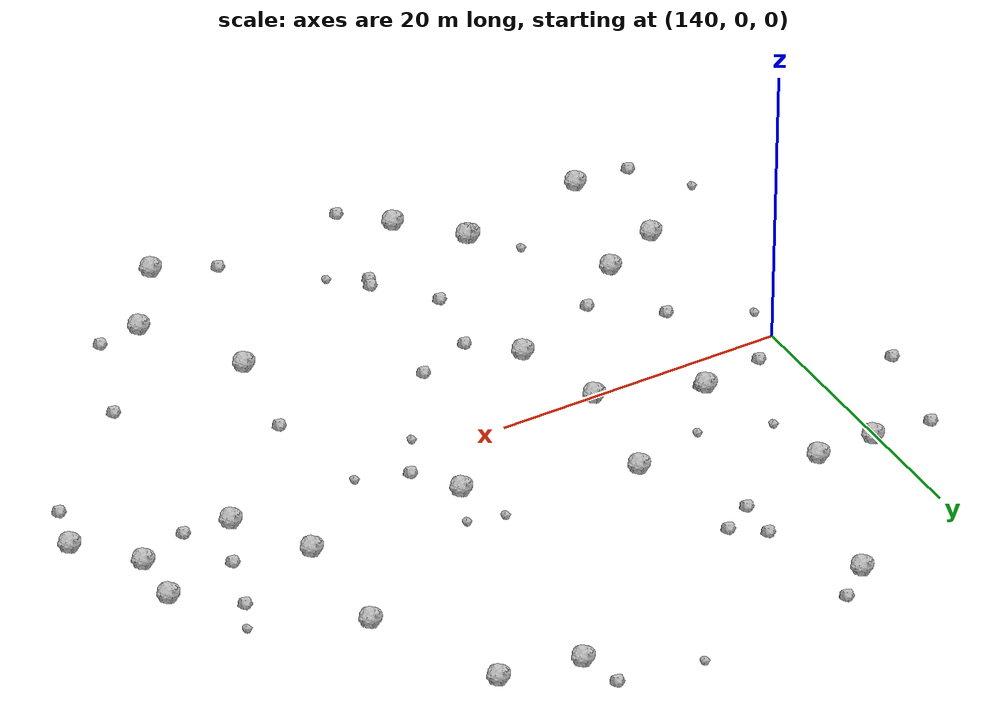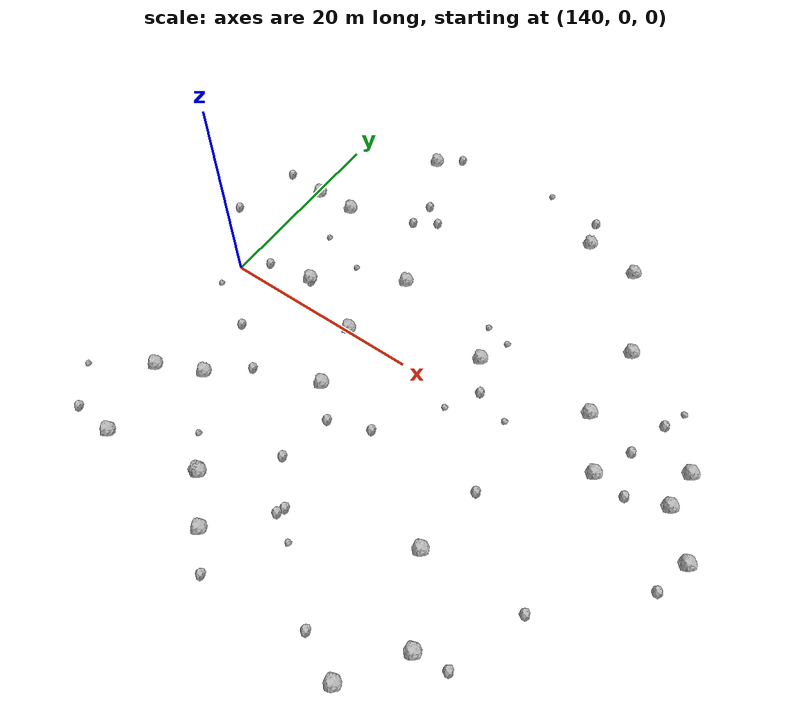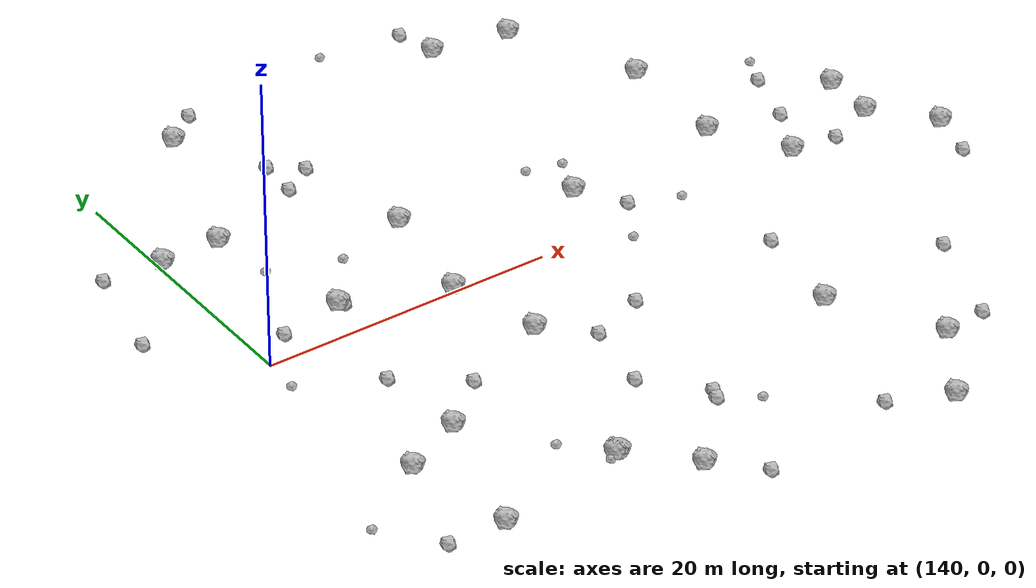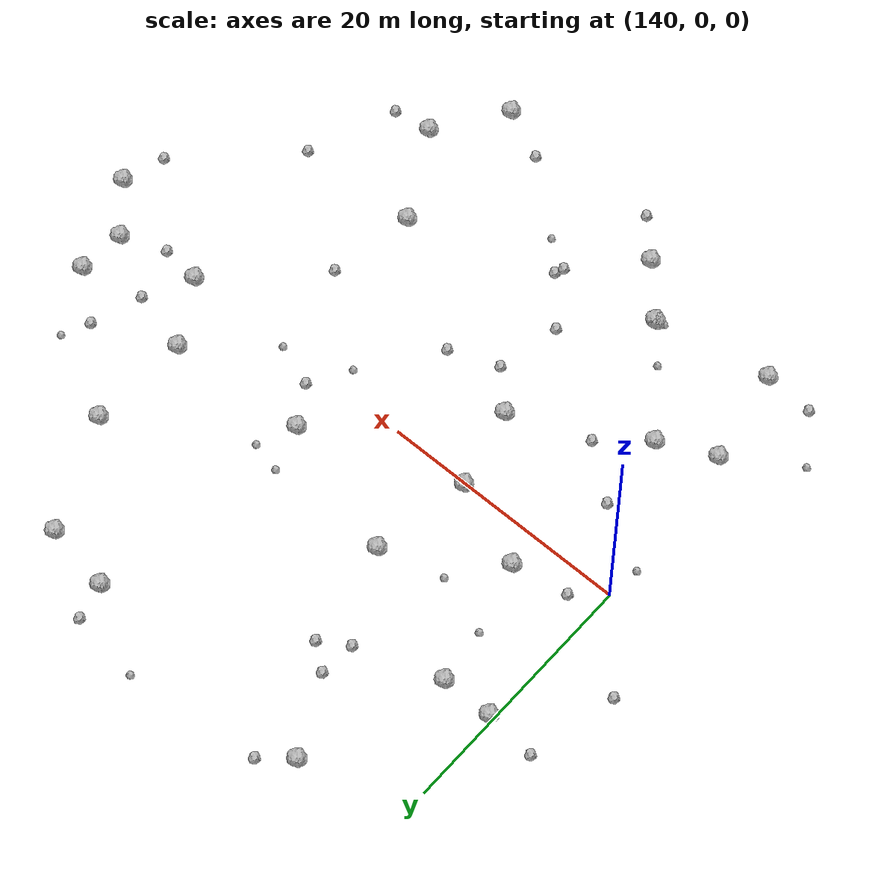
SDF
<sdf version="1.6">
 <world name="default">
  <include><uri>model://sun</uri></include>
  <model name="rock1_4_2">
   <include><uri>model://rock1</uri><pose>151.65150310497486 -19.251327201500587 0.5 0 0 0</pose></include>
  </model>
  <model name="rock1_4_3">
   <include><uri>model://rock1</uri><pose>189.61435596835423 -2.4234893984675523 0.5 0 0 0</pose></include>
  </model>
  <model name="rock1_4_4">
   <include><uri>model://rock1</uri><pose>140.41668759610215 12.68157136962057 0.5 0 0 0</pose></include>
  </model>
  <model name="rock1_4_5">
   <include><uri>model://rock1</uri><pose>165.72787047283174 4.593321504151483 0.5 0 0 0</pose></include>
  </model>
  <model name="rock1_4_6">
   <include><uri>model://rock1</uri><pose>144.50465321359263 12.731232285381054 0.5 0 0 0</pose></include>
  </model>
  <model name="rock1_4_7">
   <include><uri>model://rock1</uri><pose>175.25612448581876 -20.876622474088133 0.5 0 0 0</pose></include>
  </model>
  <model name="rock1_4_8">
   <include><uri>model://rock1</uri><pose>167.7360637766016 23.157425274293587 0.5 0 0 0</pose></include>
  </model>
  <model name="rock1_4_9">
   <include><uri>model://rock1</uri><pose>154.86874787795693 8.091772456907485 0.5 0 0 0</pose></include>
  </model>
  <model name="rock1_4_10">
   <include><uri>model://rock1</uri><pose>171.30253310065672 -13.881855305346736 0.5 0 0 0</pose></include>
  </model>
  <model name="rock1_4_11">
   <include><uri>model://rock1</uri><pose>141.15377771612862 -13.539415560511557 0.5 0 0 0</pose></include>
  </model>
  <model name="rock1_4_12">
   <include><uri>model://rock1</uri><pose>177.0872890265306 13.42806063038659 0.5 0 0 0</pose></include>
  </model>
  <model name="rock1_4_13">
   <include><uri>model://rock1</uri><pose>186.42203222218046 1.3173844476256278 0.5 0 0 0</pose></include>
  </model>
  <model name="rock1_4_14">
   <include><uri>model://rock1</uri><pose>151.81359988307815 -19.299157816442033 0.5 0 0 0</pose></include>
  </model>
  <model name="rock1_4_15">
   <include><uri>model://rock1</uri><pose>155.30218482193095 -23.036659765761826 0.5 0 0 0</pose></include>
  </model>
  <model name="rock1_4_16">
   <include><uri>model://rock1</uri><pose>176.79252347180133 5.368094954710799 0.5 0 0 0</pose></include>
  </model>
  <model name="rock1_4_17">
   <include><uri>model://rock1</uri><pose>173.09795185792996 22.201056685107687 0.5 0 0 0</pose></include>
  </model>
  <model name="rock1_4_18">
   <include><uri>model://rock1</uri><pose>186.65030177970107 5.117261214886412 0.5 0 0 0</pose></include>
  </model>
  <model name="rock1_4_19">
   <include><uri>model://rock1</uri><pose>153.51898551121135 0.18685576311930774 0.5 0 0 0</pose></include>
  </model>
  <model name="rock1_4_20">
   <include><uri>model://rock1</uri><pose>148.27522598765387 23.920234356117092 0.5 0 0 0</pose></include>
  </model>
  <model name="rock1_4_21">
   <include><uri>model://rock1</uri><pose>146.77798418351995 2.794770241444276 0.5 0 0 0</pose></include>
  </model>
  <model name="rock1_4_22">
   <include><uri>model://rock1</uri><pose>145.4244932446376 -11.513118985159362 0.5 0 0 0</pose></include>
  </model>
  <model name="rock1_4_23">
   <include><uri>model://rock1</uri><pose>171.62087871560777 -26.21868195475878 0.5 0 0 0</pose></include>
  </model>
  <model name="rock1_4_24">
   <include><uri>model://rock1</uri><pose>142.54732036148084 -21.01939229038608 0.5 0 0 0</pose></include>
  </model>
  <model name="rock1_4_25">
   <include><uri>model://rock1</uri><pose>179.78796350883835 0.32905523287072924 0.5 0 0 0</pose></include>
  </model>
  <model name="rock1_4_26">
   <include><uri>model://rock1</uri><pose>155.1079589513298 -6.159391548248145 0.5 0 0 0</pose></include>
  </model>
  <model name="rock2_4_0">
   <include><uri>model://rock2</uri><pose>157.83109790224128 -8.878827507045933 0.3 0 0 0</pose></include>
  </model>
  <model name="rock2_4_1">
   <include><uri>model://rock2</uri><pose>166.98201024990018 26.02079204116975 0.3 0 0 0</pose></include>
  </model>
  <model name="rock2_4_2">
   <include><uri>model://rock2</uri><pose>157.97489197033235 -25.817655196241216 0.3 0 0 0</pose></include>
  </model>
  <model name="rock2_4_3">
   <include><uri>model://rock2</uri><pose>188.58519247825058 -5.837125470945551 0.3 0 0 0</pose></include>
  </model>
  <model name="rock2_4_4">
   <include><uri>model://rock2</uri><pose>167.58694266879593 -24.360901039078286 0.3 0 0 0</pose></include>
  </model>
  <model name="rock2_4_5">
   <include><uri>model://rock2</uri><pose>147.03145226667434 2.599824285026834 0.3 0 0 0</pose></include>
  </model>
  <model name="rock2_4_6">
   <include><uri>model://rock2</uri><pose>172.37367749855315 -7.002116616484063 0.3 0 0 0</pose></include>
  </model>
  <model name="rock2_4_7">
   <include><uri>model://rock2</uri><pose>181.58333776424493 4.0639935727307375 0.3 0 0 0</pose></include>
  </model>
  <model name="rock2_4_8">
   <include><uri>model://rock2</uri><pose>159.96743849884612 -17.55040908316367 0.3 0 0 0</pose></include>
  </model>
  <model name="rock2_4_9">
   <include><uri>model://rock2</uri><pose>182.8785094383432 -0.04711950981369384 0.3 0 0 0</pose></include>
  </model>
  <model name="rock2_4_10">
   <include><uri>model://rock2</uri><pose>153.28961169392468 16.369999178011994 0.3 0 0 0</pose></include>
  </model>
  <model name="rock2_4_11">
   <include><uri>model://rock2</uri><pose>180.851472948708 -13.456619060334965 0.3 0 0 0</pose></include>
  </model>
  <model name="rock2_4_12">
   <include><uri>model://rock2</uri><pose>159.68571027613726 -18.256605938641897 0.3 0 0 0</pose></include>
  </model>
  <model name="rock2_4_13">
   <include><uri>model://rock2</uri><pose>136.28670224316306 13.08504307012059 0.3 0 0 0</pose></include>
  </model>
  <model name="rock2_4_14">
   <include><uri>model://rock2</uri><pose>151.30464311741986 17.893760938307437 0.3 0 0 0</pose></include>
  </model>
  <model name="rock2_4_15">
   <include><uri>model://rock2</uri><pose>138.5590056347634 -20.794499771301012 0.3 0 0 0</pose></include>
  </model>
  <model name="rock2_4_16">
   <include><uri>model://rock2</uri><pose>148.86640705291623 -8.567503230824766 0.3 0 0 0</pose></include>
  </model>
  <model name="rock2_4_17">
   <include><uri>model://rock2</uri><pose>156.80825258410073 -13.961402147081834 0.3 0 0 0</pose></include>
  </model>
  <model name="rock2_4_18">
   <include><uri>model://rock2</uri><pose>134.68961920993948 5.991929116259733 0.3 0 0 0</pose></include>
  </model>
  <model name="rock2_4_19">
   <include><uri>model://rock2</uri><pose>151.09855752885176 14.986454744091176 0.3 0 0 0</pose></include>
  </model>
  <model name="rock2_4_20">
   <include><uri>model://rock2</uri><pose>167.59954464376546 1.5090813664642724 0.3 0 0 0</pose></include>
  </model>
  <model name="rock2_4_21">
   <include><uri>model://rock2</uri><pose>178.22372745688835 -20.457652989140165 0.3 0 0 0</pose></include>
  </model>
  <model name="rock2_4_22">
   <include><uri>model://rock2</uri><pose>182.89700152249173 8.142962042392014 0.3 0 0 0</pose></include>
  </model>
  <model name="rock2_4_23">
   <include><uri>model://rock2</uri><pose>142.27046618778476 1.9959328851201654 0.3 0 0 0</pose></include>
  </model>
  <model name="rock2_4_24">
   <include><uri>model://rock2</uri><pose>144.77654081895986 -5.394180820169005 0.3 0 0 0</pose></include>
  </model>
  <model name="rock2_4_25">
   <include><uri>model://rock2</uri><pose>150.50896252985282 25.794246389585396 0.3 0 0 0</pose></include>
  </model>
  <model name="rock2_4_26">
   <include><uri>model://rock2</uri><pose>161.6820025057975 -7.395801587050773 0.3 0 0 0</pose></include>
  </model>
  <model name="rock3_4_0">
   <include><uri>model://rock3</uri><pose>135.79539860821743 -17.115540520161876 0.2 0 0 0</pose></include>
  </model>
  <model name="rock3_4_1">
   <include><uri>model://rock3</uri><pose>183.86591211577618 10.242914306426172 0.2 0 0 0</pose></include>
  </model>
  <model name="rock3_4_2">
   <include><uri>model://rock3</uri><pose>170.91591536611128 0.25468792324602063 0.2 0 0 0</pose></include>
  </model>
  <model name="rock3_4_3">
   <include><uri>model://rock3</uri><pose>164.50331003475776 8.146094647622292 0.2 0 0 0</pose></include>
  </model>
  <model name="rock3_4_4">
   <include><uri>model://rock3</uri><pose>162.04934549859502 -19.723134479751327 0.2 0 0 0</pose></include>
  </model>
  <model name="rock3_4_5">
   <include><uri>model://rock3</uri><pose>151.0379474941361 -19.52548428193486 0.2 0 0 0</pose></include>
  </model>
  <model name="rock3_4_6">
   <include><uri>model://rock3</uri><pose>139.73834899462133 -2.697781181570214 0.2 0 0 0</pose></include>
  </model>
  <model name="rock3_4_7">
   <include><uri>model://rock3</uri><pose>166.92972428583852 7.547101622676472 0.2 0 0 0</pose></include>
  </model>
  <model name="rock3_4_8">
   <include><uri>model://rock3</uri><pose>161.27706400460477 26.8124625598658 0.2 0 0 0</pose></include>
  </model>
  <model name="rock3_4_9">
   <include><uri>model://rock3</uri><pose>149.21969797952457 -16.52454511107396 0.2 0 0 0</pose></include>
  </model>
  <model name="rock3_4_10">
   <include><uri>model://rock3</uri><pose>165.74184179290077 -1.6618182226166702 0.2 0 0 0</pose></include>
  </model>
  <model name="rock3_4_11">
   <include><uri>model://rock3</uri><pose>145.03002399836998 8.293323927256822 0.2 0 0 0</pose></include>
  </model>
  <model name="rock3_4_12">
   <include><uri>model://rock3</uri><pose>149.68730704259323 6.6936075849789844 0.2 0 0 0</pose></include>
  </model>
 </world>
</sdf>
